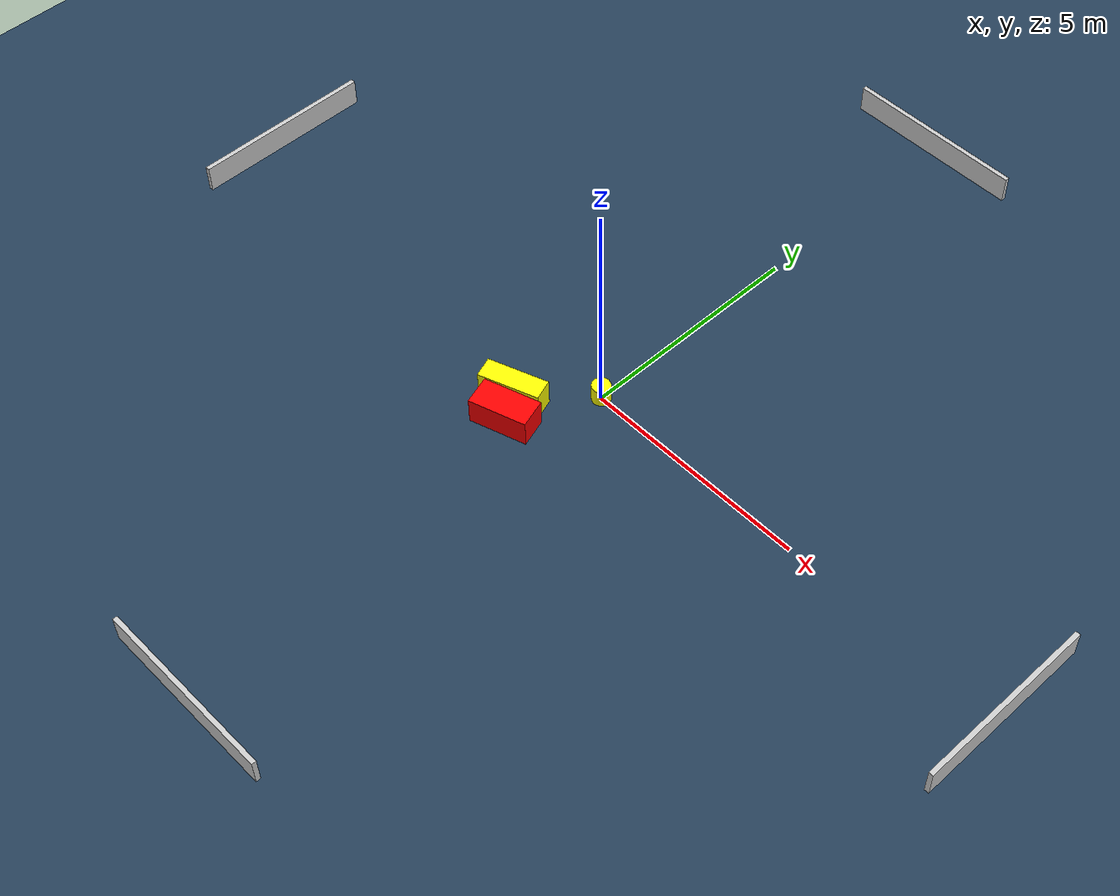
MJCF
<?xml version="1.0" ?>
<mujoco model="generated_environment">
  <option timestep="0.01" integrator="RK4" cone="elliptic"/>
  <default>
    <geom density="1"/>
  </default>
  <asset>
    <texture builtin="gradient" height="3072" name="skybox" rgb1="0.3 0.5 0.7" rgb2="0 0 0" type="skybox" width="512"/>
    <texture builtin="checker" height="300" name="groundplane" rgb1="0.2 0.3 0.4" rgb2="0.1 0.2 0.3" type="2d" width="300"/>
    <material name="groundplane" reflectance="0.2" texrepeat="5 5" texture="groundplane"/>
  </asset>
  <worldbody>
    <light dir="0 0 -1" directional="true" pos="0 0 1.5"/>
    <geom condim="3" friction="0.5 0.005 0.001" material="groundplane" name="floor" pos="0 0 0" size="0 0 0.05" type="plane"/>
    <body name="walls">
      <geom name="wall_1" condim="4" pos="-10.0 0.0 0.3" rgba="0.800000011920929 0.800000011920929 0.800000011920929 1.0" size="0.05 2.0 0.3" type="box"/>
      <geom name="wall_2" condim="4" pos="10.0 0.0 0.3" rgba="0.800000011920929 0.800000011920929 0.800000011920929 1.0" size="0.05 2.0 0.3" type="box"/>
      <geom name="wall_3" condim="4" pos="0.0 -10.0 0.3" rgba="0.800000011920929 0.800000011920929 0.800000011920929 1.0" size="2.0 0.05 0.3" type="box"/>
      <geom name="wall_4" condim="4" pos="0.0 10.0 0.3" rgba="0.800000011920929 0.800000011920929 0.800000011920929 1.0" size="2.0 0.05 0.3" type="box"/>
    </body>
    <body name="robot">
      <joint name="joint_x" type="slide" pos="0 0 0" axis="1 0 0"/>
      <joint name="joint_y" type="slide" pos="0 0 0" axis="0 1 0"/>
      <geom name="robot" type="cylinder" pos="0.0 0.0 0.2" size="0.2 0.2 0.0" mass="5.0" friction="1.0 0.005 0.0001" condim="4" rgba="1.0 1.0 0.0 1.0"/>
    </body>
    <body name="obstacle_1_movable">
      <geom name="obstacle_1_movable" condim="4" pos="-1.19774982385057 -1.2272970835568031 0.3" euler="0 0 289.65911988869016" friction="0.0 0.005 0.001" rgba="1.0 1.0 0.0 1.0" size="0.2274108880275497 0.6662795677333764 0.3" type="box" mass="0.1"/>
      <joint type="free"/>
    </body>
    <body name="obstacle_2_static">
      <geom name="obstacle_2_static" condim="4" pos="-0.8765725230256312 -1.7379887218051542 0.3" euler="0 0 287.8188604918073" friction="0.0 0.005 0.001" rgba="1.0 0.0 0.0 1.0" size="0.3148144511157083 0.6294519683534672 0.3" type="box"/>
    </body>
  </worldbody>
  <actuator>
    <motor name="actuator_x" joint="joint_x" gear="1" ctrlrange="-1 1"/>
    <motor name="actuator_y" joint="joint_y" gear="1" ctrlrange="-1 1"/>
  </actuator>
</mujoco>
